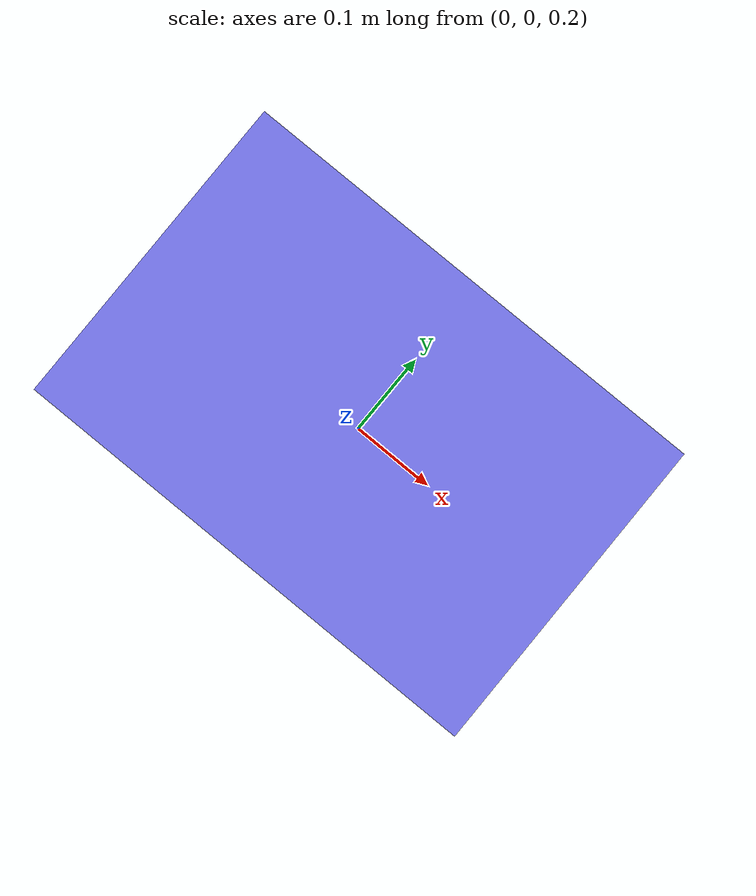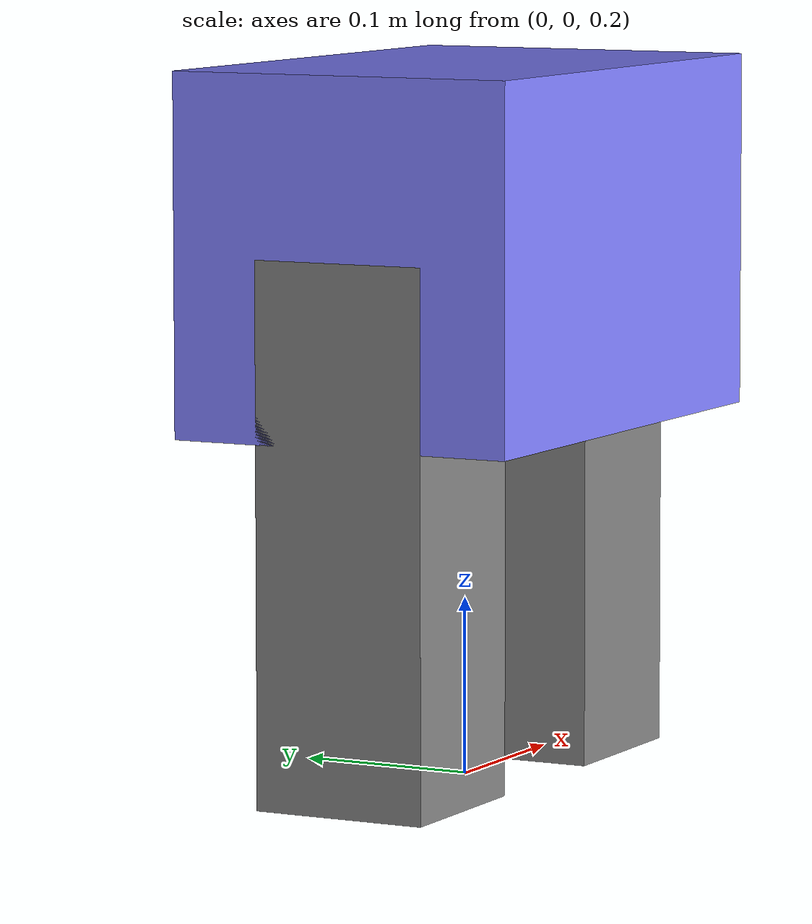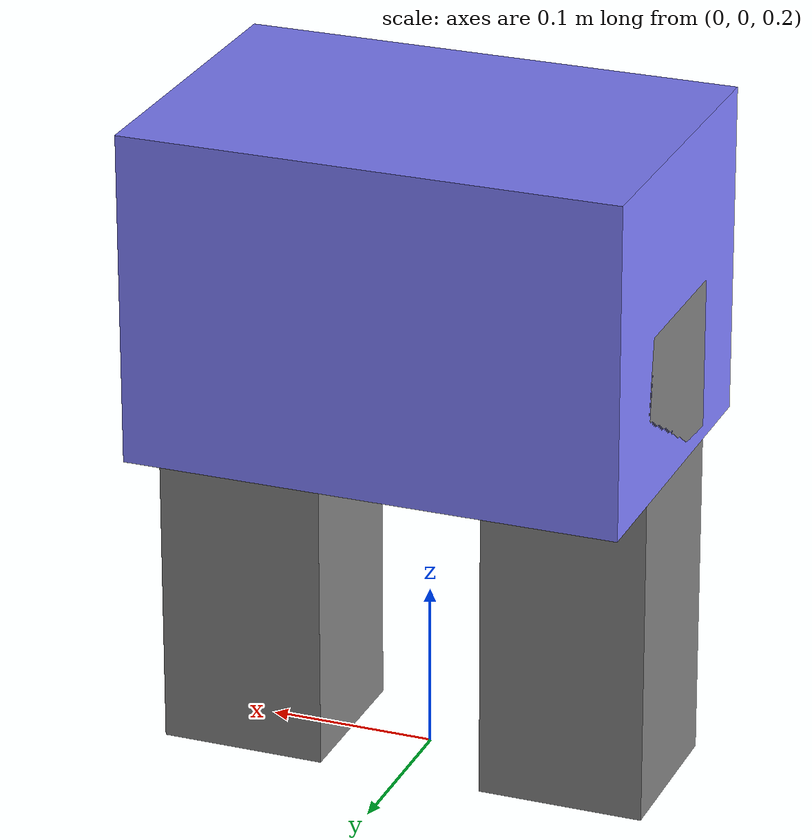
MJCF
<mujoco>
    <option gravity="0 0 -9.81" />
    <worldbody>
        <light diffuse=".5 .5 .5" pos="0 0 3" dir="0 0 -1" />
        <geom type="plane" size="5 5 0.1" rgba=".9 .9 .9 1" />
        <body name="torso" pos="0 0 0.5">
            <freejoint name="root" />
            <inertial pos="0 0 0" mass="1" diaginertia="0.1 0.1 0.1" />
            <geom type="box" size="0.15 0.1 0.1" rgba="0.5 0.5 1 1" />

            <body name="left_leg" pos="-0.1 0 0">
                <inertial pos="0 0 -0.15" mass="0.2" diaginertia="0.01 0.01 0.01" />
                <joint name="left_leg" type="hinge" axis="1 0 0" pos="0 0 0" />
                <geom type="box" pos="0 0 -0.15" size="0.05 0.05 0.15" rgba="0.5 0.5 0.5 1" />
            </body>

            <body name="right_leg" pos="0.1 0 0">
                <inertial pos="0 0 -0.15" mass="0.2" diaginertia="0.01 0.01 0.01" />
                <joint name="right_leg" type="hinge" axis="1 0 0" pos="0 0 0" />
                <geom type="box" pos="0 0 -0.15" size="0.05 0.05 0.15" rgba="0.5 0.5 0.5 1" />
            </body>
        </body>
    </worldbody>
    <actuator>
        <motor joint="left_leg" name="left_motor" />
        <motor joint="right_leg" name="right_motor" />
    </actuator>
</mujoco>
